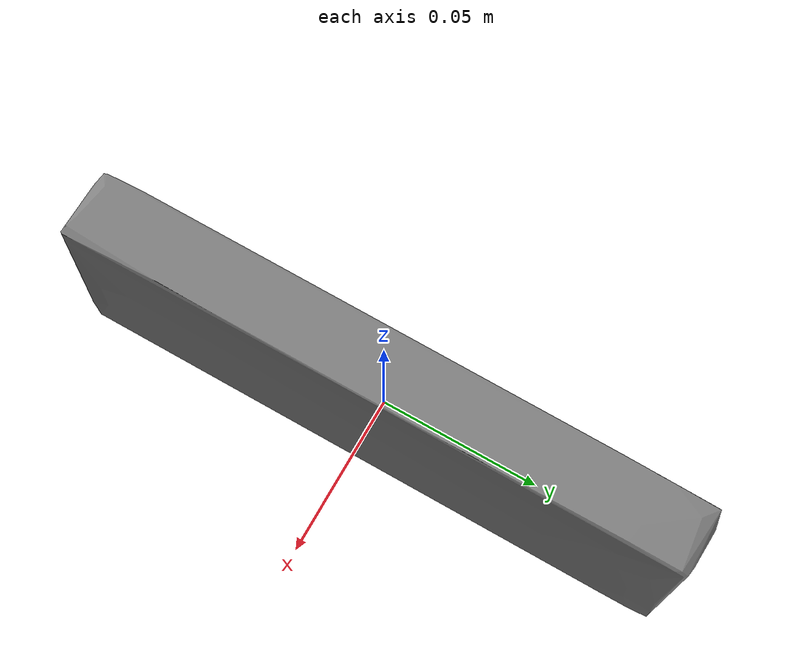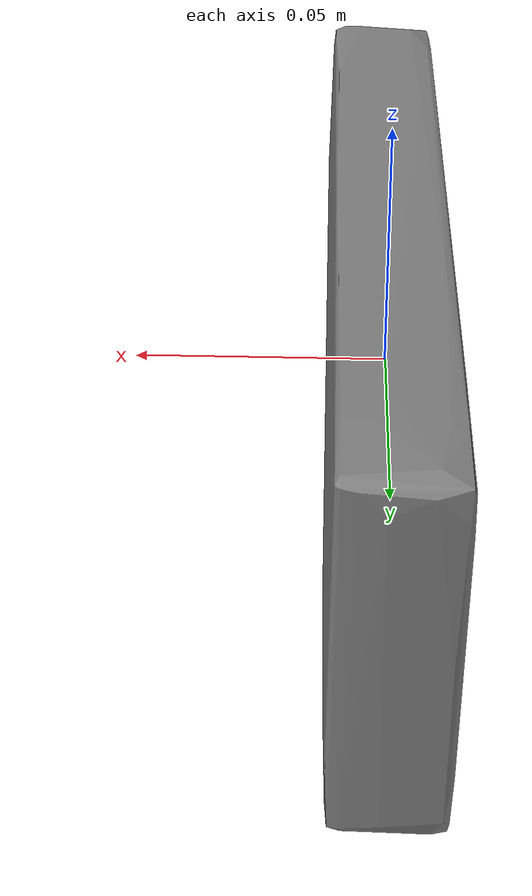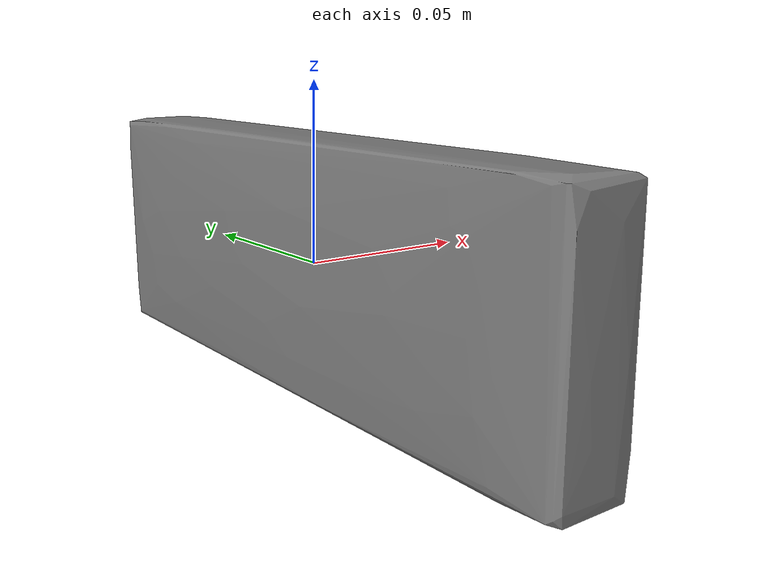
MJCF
<mujoco model="box_Little_Debbie_Donut_Sticks_6_cake_donuts_10_oz_total_M">
  <default>
    <default class="visual">
      <geom group="2" type="mesh" contype="0" conaffinity="0" />
    </default>
    <default class="collision">
      <geom group="3" type="mesh" />
    </default>
  </default>
  <asset>
    <mesh file="box_Little_Debbie_Donut_Sticks_6_cake_donuts_10_oz_total_M.stl" />
    <mesh file="box_Little_Debbie_Donut_Sticks_6_cake_donuts_10_oz_total_M_collision_0.stl" />
  </asset>
  <worldbody>
    <body name="box_Little_Debbie_Donut_Sticks_6_cake_donuts_10_oz_total_M">
      <geom mesh="box_Little_Debbie_Donut_Sticks_6_cake_donuts_10_oz_total_M" class="visual" />
      <geom mesh="box_Little_Debbie_Donut_Sticks_6_cake_donuts_10_oz_total_M_collision_0" class="collision" />
    </body>
  </worldbody>
</mujoco>
